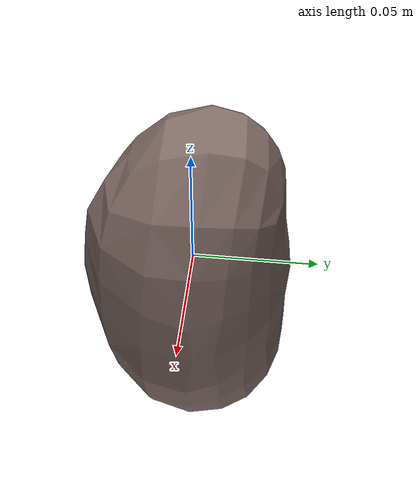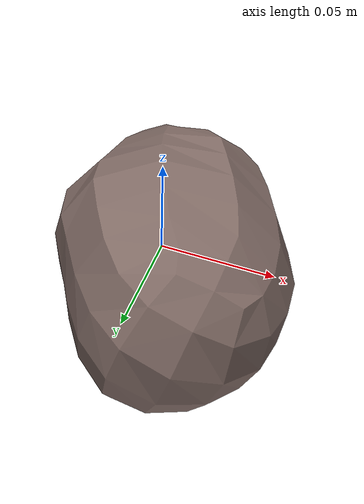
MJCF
<mujoco model="Potato_14">
  <compiler autolimits="true" boundmass="0.01" angle="radian"/>
  <default>
    <default class="/">
      <default class="__VISUAL_MJT__">
        <geom contype="0" conaffinity="0" group="0"/>
      </default>
      <default class="__STRUCTURAL_MJT__">
        <geom contype="8" conaffinity="15" group="4" friction="0.90000000000000002 0.90000000000000002 0.001" solref="0.025000000000000001 1" solimp="0.998 0.998 0.001"/>
      </default>
      <default class="__DYNAMIC_MJT__">
        <geom contype="1" conaffinity="15" group="4" friction="0.90000000000000002 0.90000000000000002 0.001" solref="0.025000000000000001 1" solimp="0.998 0.998 0.001"/>
      </default>
    </default>
  </default>
  <asset>
    <texture name="Potato2_Mat4" type="2d" file="Potato2_AlbedoTransparency.png"/>
    <material name="material_Potato2_Mat4" class="/" texture="Potato2_Mat4" specular="0.5" shininess="0.5" rgba="0.67647060000000003 0.58693770000000001 0.58693770000000001 1"/>
    <mesh name="Potato_14_potato_b4" class="/" file="Potato_14_potato_b4/Potato_14_potato_b4.obj" scale="1 1 1"/>
  </asset>
  <worldbody>
    <body name="Potato_14">
      <joint name="Potato_14_free" class="/" type="free" pos="0 0 0" axis="0 0 1" stiffness="0" range="0 0" armature="0" damping="0.10000000000000001" frictionloss="0"/>
      <body name="Potato_14_potato_b4" pos="0.0026199999999999999 0.00071577789306640632 0.00034392333984374998" quat="0.99781370162963867 -0.06608947366476059 0 0">
        <geom name="Potato_14_potato_b4" class="__VISUAL_MJT__" type="mesh" material="material_Potato2_Mat4" shellinertia="true" mesh="Potato_14_potato_b4"/>
        <geom name="Potato_14_PrimitiveCollider_0" class="__DYNAMIC_MJT__" type="capsule" size="0.039515584707260132 0.032953351736068726" rgba="0 1 0 1" pos="0.011718518100678921 -0.0010221309494227171 -0.00026029045693576336" quat="1.4751396609986736e-06 0.99999999999891198 0 0"/>
        <geom name="Potato_14_PrimitiveCollider_1" class="__DYNAMIC_MJT__" type="capsule" size="0.039515584707260132 0.032953351736068726" rgba="0 1 0 1" pos="-0.0064814826473593712 -0.0010221309494227171 -0.00026029045693576336" quat="1.4751396609986736e-06 0.99999999999891198 0 0"/>
      </body>
    </body>
  </worldbody>
</mujoco>
